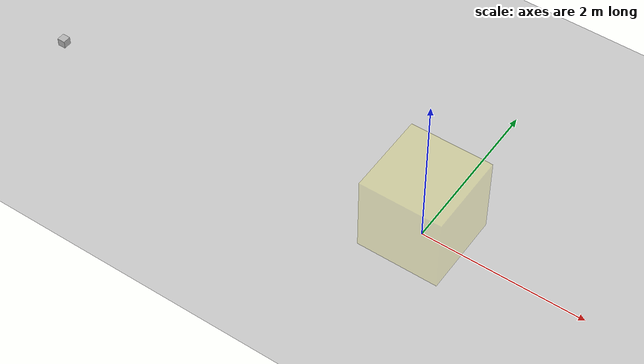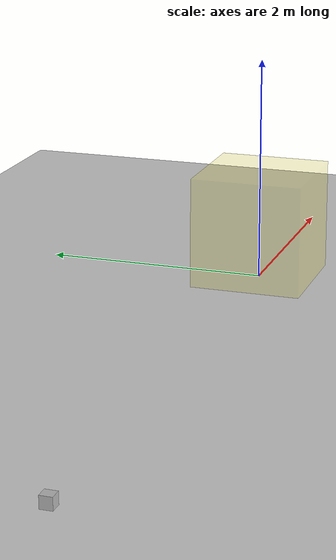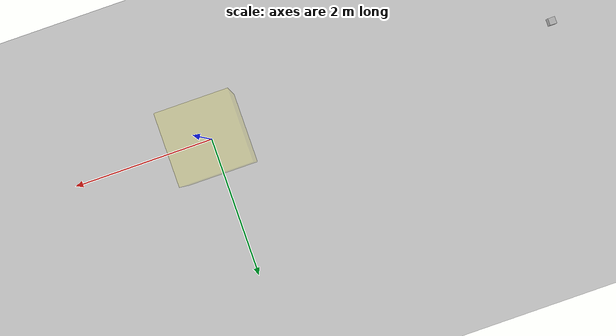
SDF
<sdf version='1.5'>
  <world name='default'>
    <!-- A global light source -->
    <include>
      <uri>model://sun</uri>
    </include>
    <!-- A ground plane -->
    <include>
      <uri>model://ground_plane</uri>
    </include>

    <model name='RegionEventBox'>
      <static>1</static>
      <pose>0 0 0.5 0 -0 0</pose>
      <link name='link'>
        <visual name='visual'>
          <transparency>0.75</transparency>
          <geometry>
            <box>
              <size>1 1 1</size>
            </box>
          </geometry>
          <material>
            <script>
              <uri>file://media/materials/scripts/gazebo.material</uri>
              <name>Gazebo/Yellow</name>
            </script>
          </material>
        </visual>
      </link>
      <plugin name='region_event_box' filename='libRegionEventBoxPlugin.so'>
        <event>
          <name>model_in_region_event_box</name>
          <type>inclusion</type>
          <active>true</active>
        </event>
      </plugin>
    </model>

    <model name='box'>
      <pose>-5 0 0.05 0 -0 0</pose>
      <link name='link'>
        <collision name='collision'>
          <geometry>
            <box>
              <size>0.1 0.1 0.1</size>
            </box>
          </geometry>
        </collision>
        <visual name='visual'>
          <geometry>
            <box>
              <size>0.1 0.1 0.1</size>
            </box>
          </geometry>
        </visual>
      </link>
    </model>
  </world>
</sdf>
